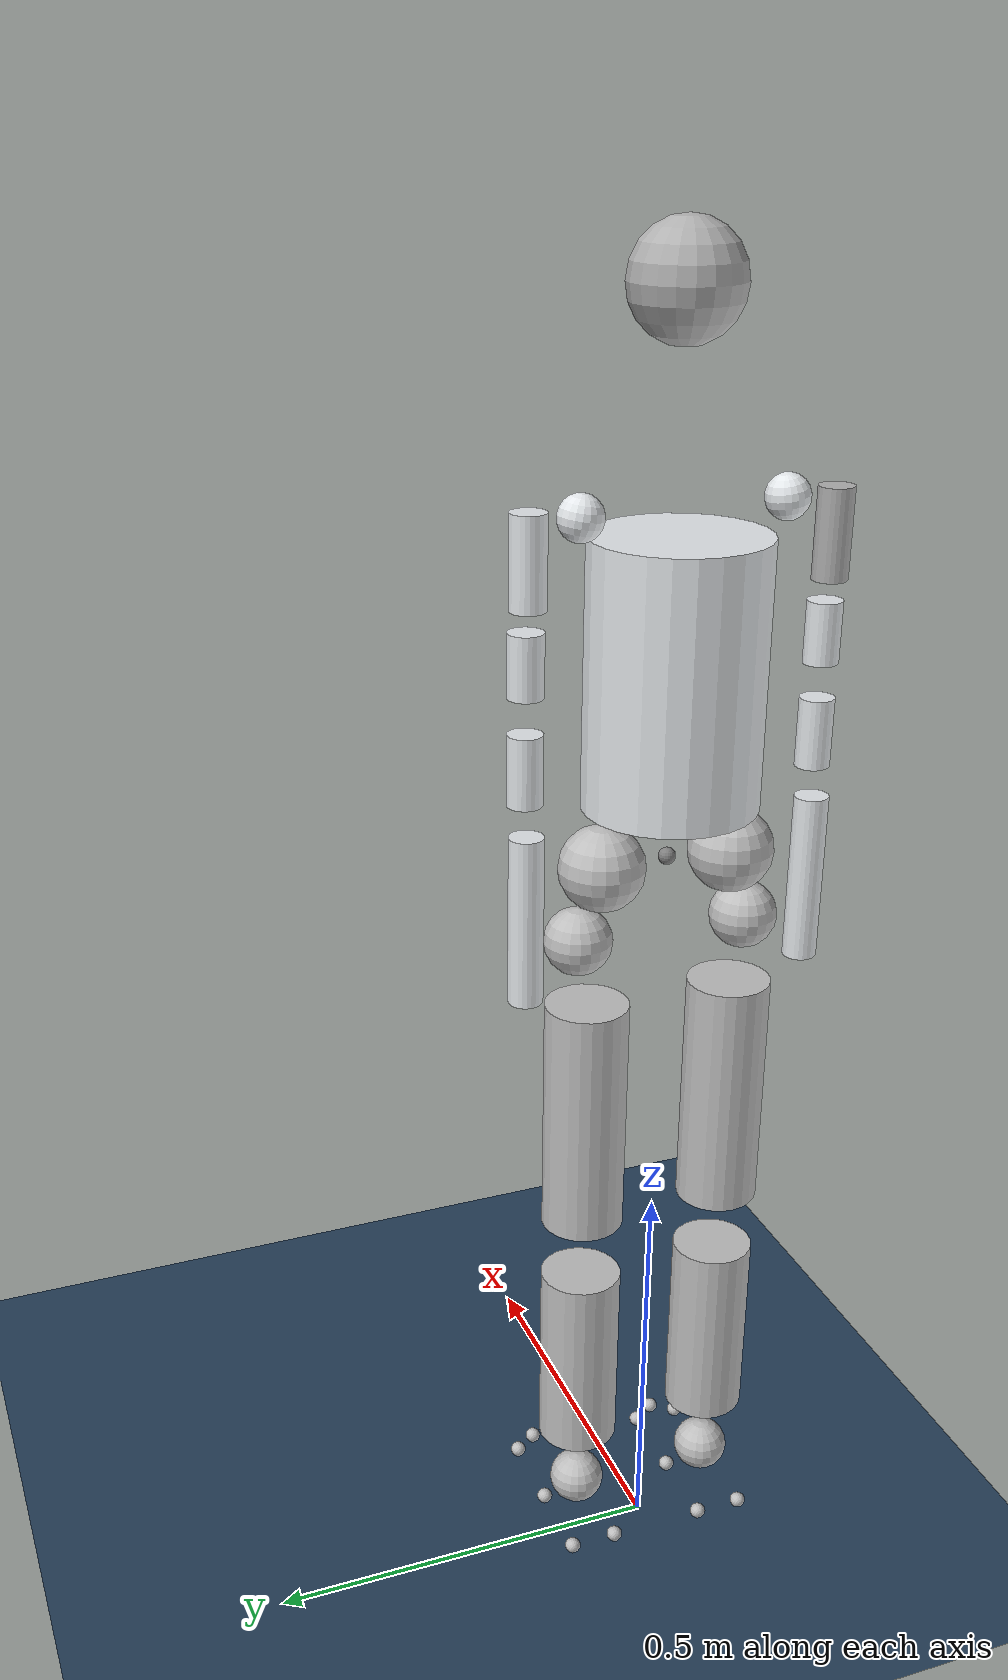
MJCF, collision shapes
<mujoco model="custom_robot_policy_scene">
  <include file="../src/assets/robots/custom_robot/xmls/custom_robot.xml" />

  <compiler
    angle="radian"
    meshdir="../src/assets/robots/custom_robot/xmls/assets"
    autolimits="true"
    eulerseq="zyx" />

  <asset>
    <texture
      name="groundplane"
      type="2d"
      builtin="checker"
      rgb1="0.2 0.3 0.4"
      rgb2="0.1 0.2 0.3"
      width="300"
      height="300"
      mark="edge"
      markrgb="0.8 0.8 0.8" />
    <material
      name="groundplane"
      texture="groundplane"
      texuniform="true"
      texrepeat="8 8"
      reflectance="0.2" />
  </asset>

  <worldbody>
    <light name="sun" pos="0 0 3" dir="0 0 -1" directional="true" castshadow="true" />
    <geom
      name="terrain"
      type="plane"
      size="20 20 0.1"
      material="groundplane"
      contype="1"
      conaffinity="1"
      friction="1.0 0.2 0.2" />
  </worldbody>

  <actuator>
    <motor name="left_hip_yaw_joint_motor" joint="left_hip_yaw_joint" ctrlrange="-80 80" />
    <motor name="left_hip_roll_joint_motor" joint="left_hip_roll_joint" ctrlrange="-120 120" />
    <motor name="left_hip_pitch_joint_motor" joint="left_hip_pitch_joint" ctrlrange="-212 212" />
    <motor name="left_knee_joint_motor" joint="left_knee_joint" ctrlrange="-180 180" />
    <motor name="left_ankle_pitch_joint_motor" joint="left_ankle_pitch_joint" ctrlrange="-80 80" />
    <motor name="left_ankle_roll_joint_motor" joint="left_ankle_roll_joint" ctrlrange="-20 20" />
    <motor name="right_hip_yaw_joint_motor" joint="right_hip_yaw_joint" ctrlrange="-80 80" />
    <motor name="right_hip_roll_joint_motor" joint="right_hip_roll_joint" ctrlrange="-120 120" />
    <motor name="right_hip_pitch_joint_motor" joint="right_hip_pitch_joint" ctrlrange="-212 212" />
    <motor name="right_knee_joint_motor" joint="right_knee_joint" ctrlrange="-180 180" />
    <motor name="right_ankle_pitch_joint_motor" joint="right_ankle_pitch_joint" ctrlrange="-80 80" />
    <motor name="right_ankle_roll_joint_motor" joint="right_ankle_roll_joint" ctrlrange="-20 20" />
  </actuator>
</mujoco>

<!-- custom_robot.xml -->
<mujoco model="X1">
  <compiler angle="radian" meshdir="assets/"/>

  <default>
    <joint damping="0.1" armature="0.01" frictionloss="0.2"/>
  </default>

  <asset>
    <mesh name="pelvis_link" file="pelvis_link.STL"/>
    <mesh name="left_hip_yaw_link" file="left_hip_yaw_link.STL"/>
    <mesh name="left_hip_roll_link" file="left_hip_roll_link.STL"/>
    <mesh name="left_hip_pitch_link" file="left_hip_pitch_link.STL"/>
    <mesh name="left_knee_link" file="left_knee_link.STL"/>
    <mesh name="left_ankle_pitch_link" file="left_ankle_pitch_link.STL"/>
    <mesh name="left_ankle_roll_link" file="left_ankle_roll_link.STL"/>
    <mesh name="right_hip_yaw_link" file="right_hip_yaw_link.STL"/>
    <mesh name="right_hip_roll_link" file="right_hip_roll_link.STL"/>
    <mesh name="right_hip_pitch_link" file="right_hip_pitch_link.STL"/>
    <mesh name="right_knee_link" file="right_knee_link.STL"/>
    <mesh name="right_ankle_pitch_link" file="right_ankle_pitch_link.STL"/>
    <mesh name="right_ankle_roll_link" file="right_ankle_roll_link.STL"/>
    <mesh name="waist_yaw_link" file="waist_yaw_link.STL"/>
    <mesh name="torso_link" file="torso_link.STL"/>
    <mesh name="head_link" file="head_link.STL"/>
    <mesh name="left_shoulder_pitch_link" file="left_shoulder_pitch_link.STL"/>
    <mesh name="left_shoulder_roll_link" file="left_shoulder_roll_link.STL"/>
    <mesh name="left_shoulder_yaw_link" file="left_shoulder_yaw_link.STL"/>
    <mesh name="left_elbow_link" file="left_elbow_link.STL"/>
    <mesh name="left_hand_roll_link" file="left_hand_roll_link.STL"/>
    <mesh name="right_shoulder_pitch_link" file="right_shoulder_pitch_link.STL"/>
    <mesh name="right_shoulder_roll_link" file="right_shoulder_roll_link.STL"/>
    <mesh name="right_shoulder_yaw_link" file="right_shoulder_yaw_link.STL"/>
    <mesh name="right_elbow_link" file="right_elbow_link.STL"/>
    <mesh name="right_hand_roll_link" content_type="model/stl" file="right_hand_roll_link.STL"/>
  </asset>

  <worldbody>
    <body name="pelvis_link" pos="0 0 0.97">
      <freejoint name="root_freejoint"/>
      <inertial pos="0 0 0.015" mass="0.0094248" diaginertia="9e-7 9e-7 5e-7"/>
      <geom type="mesh" contype="0" conaffinity="0" group="1" density="0" rgba="1 1 1 1" mesh="pelvis_link"/>
      <site name="imu_in_pelvis" size="0.01" pos="0.0 0.0 0.0"/>
      <body name="left_hip_yaw_link" pos="0 0 -0.083">
        <inertial pos="0.0035296 0.061121 0.0704809" quat="0.745645 0.416728 -0.336521 0.396365" mass="1.52173" diaginertia="0.0112539 0.00983725 0.00776992"/>
        <joint name="left_hip_yaw_joint" pos="0 0 0" axis="0 0 1" range="-0.518 0.518" actuatorfrcrange="-80 80"/>
        <geom type="mesh" contype="0" conaffinity="0" group="1" density="0" rgba="0.749024 0.749024 0.749024 1" mesh="left_hip_yaw_link"/>
        <geom size="0.05" pos="0 0.08 0.08" rgba="0.749024 0.749024 0.749024 1"/>
        <body name="left_hip_roll_link" pos="0.006 0.1175 0.0315">
          <inertial pos="-0.0195622 -0.0062121 -0.0731782" quat="0.478496 0.124224 0.103969 0.863018" mass="4.45606" diaginertia="0.0228823 0.0200094 0.0119336"/>
          <joint name="left_hip_roll_joint" pos="0 0 0" axis="1 0 0" range="-0.175 0.96" actuatorfrcrange="-120 120"/>
          <geom type="mesh" contype="0" conaffinity="0" group="1" density="0" rgba="0.749024 0.749024 0.749024 1" mesh="left_hip_roll_link"/>
          <geom size="0.04" pos="0 -0.013 -0.04" rgba="0.749024 0.749024 0.749024 1"/>
          <body name="left_hip_pitch_link" pos="0 -0.026 -0.123">
            <inertial pos="0.001095 0.0170436 -0.134553" quat="0.998957 -0.0345331 -0.0102479 0.0280764" mass="3.06209" diaginertia="0.0234556 0.0226233 0.00579509"/>
            <joint name="left_hip_pitch_joint" pos="0 0 0" axis="0 -1 0" range="-0.524 1.047" actuatorfrcrange="-212 212"/>
            <geom type="mesh" contype="0" conaffinity="0" group="1" density="0" rgba="0.749024 0.749024 0.749024 1" mesh="left_hip_pitch_link"/>
            <geom size="0.05 0.15" pos="0 0 -0.15" type="cylinder" rgba="0.749024 0.749024 0.749024 1"/>
            <body name="left_knee_link" pos="0 0 -0.324779">
              <inertial pos="0.005241 -0.000252 -0.118625" quat="0.716111 0.0231474 0.0221529 0.697251" mass="1.83843" diaginertia="0.0200792 0.0195009 0.00177258"/>
              <joint name="left_knee_joint" pos="0 0 0" axis="0 -1 0" range="-1.745 0.087" actuatorfrcrange="-180 180"/>
              <geom type="mesh" contype="0" conaffinity="0" group="1" density="0" rgba="0.749024 0.749024 0.749024 1" mesh="left_knee_link"/>
              <geom size="0.05 0.125" pos="0 0 -0.18" type="cylinder" rgba="0.749024 0.749024 0.749024 1"/>
              <body name="left_ankle_pitch_link" pos="0 0 -0.3595">
                <inertial pos="0.00270709 -0.00199973 -0.0216465" quat="0.701063 -0.0922568 -0.0922568 0.701063" mass="0.34756" diaginertia="0.00036491 0.00029392 0.00016663"/>
                <joint name="left_ankle_pitch_joint" pos="0 0 0" axis="0 -1 0" range="-1.082 1.082" actuatorfrcrange="-80 80"/>
                <geom type="mesh" contype="0" conaffinity="0" group="1" density="0" rgba="0.749024 0.749024 0.749024 1" mesh="left_ankle_pitch_link"/>
                <geom size="0.035" pos="0 -0.001 -0.03" rgba="0.749024 0.749024 0.749024 1"/>
                <body name="left_ankle_roll_link" pos="0 -0.002 -0.059">
                  <inertial pos="0.0505149 3.36e-05 -0.0136249" quat="0.000452713 0.691422 -3.76194e-05 0.722451" mass="1.29544" diaginertia="0.00543875 0.0051377 0.00115385"/>
                  <joint name="left_ankle_roll_joint" pos="0 0 0" axis="1 0 0" range="-0.664 0.664" actuatorfrcrange="-20 20"/>
                  <geom type="mesh" contype="0" conaffinity="0" group="1" density="0" rgba="0.749024 0.749024 0.749024 1" mesh="left_ankle_roll_link"/>
                  <geom name="left_foot1_collision" size="0.01" pos="-0.06 0.03 -0.033" quat="0.707107 0 -0.707107 0" rgba="0.749024 0.749024 0.749024 1"/>
                  <geom name="left_foot2_collision" size="0.01" pos="-0.06 -0.03 -0.033" quat="0.707107 0 -0.707107 0" rgba="0.749024 0.749024 0.749024 1"/>
                  <geom name="left_foot3_collision" size="0.01" pos="0.04 0.03 -0.033" quat="0.707107 0 -0.707107 0" rgba="0.749024 0.749024 0.749024 1"/>
                  <geom name="left_foot4_collision" size="0.01" pos="0.14 0.03 -0.033" quat="0.707107 0 -0.707107 0" rgba="0.749024 0.749024 0.749024 1"/>
                  <geom name="left_foot5_collision" size="0.01" pos="0.04 -0.03 -0.033" quat="0.707107 0 -0.707107 0" rgba="0.749024 0.749024 0.749024 1"/>
                  <geom name="left_foot6_collision" size="0.01" pos="0.14 -0.03 -0.033" quat="0.707107 0 -0.707107 0" rgba="0.749024 0.749024 0.749024 1"/>
                  <geom name="left_foot7_collision" size="0.01" pos="0.16 0 -0.033" quat="0.707107 0 -0.707107 0" rgba="0.749024 0.749024 0.749024 1"/>
                  <site name="left_foot" pos="0.05 0 -0.033" size="0.005"/>
                </body>
              </body>
            </body>
          </body>
        </body>
      </body>
      <body name="right_hip_yaw_link" pos="0 0 -0.083">
        <inertial pos="-0.0005917 -0.0372409 0.0516011" quat="0.552247 0.521761 -0.459888 0.459665" mass="2.08267" diaginertia="0.0121792 0.00970405 0.0061063"/>
        <joint name="right_hip_yaw_joint" pos="0 0 0" axis="0 0 -1" range="-0.785 0.785" actuatorfrcrange="-80 80"/>
        <geom type="mesh" contype="0" conaffinity="0" group="1" density="0" rgba="0.749024 0.749024 0.749024 1" mesh="right_hip_yaw_link"/>
        <geom size="0.05" pos="0 -0.08 0.08" rgba="0.749024 0.749024 0.749024 1"/>
        <body name="right_hip_roll_link" pos="0.006 -0.1175 0.0315">
          <inertial pos="-0.0195939 0.0062432 -0.0732378" quat="0.862889 0.103922 0.124075 0.478777" mass="4.45928" diaginertia="0.0229117 0.0200381 0.0119316"/>
          <joint name="right_hip_roll_joint" pos="0 0 0" axis="-1 0 0" range="-0.175 0.96" actuatorfrcrange="-120 120"/>
          <geom type="mesh" contype="0" conaffinity="0" group="1" density="0" rgba="0.749024 0.749024 0.749024 1" mesh="right_hip_roll_link"/>
          <geom size="0.04" pos="0 0.013 -0.04" rgba="0.749024 0.749024 0.749024 1"/>
          <body name="right_hip_pitch_link" pos="0 0.026 -0.123">
            <inertial pos="0.0010922 -0.0170324 -0.134845" quat="0.998503 0.0344118 -0.00962282 -0.0414217" mass="3.06882" diaginertia="0.0235812 0.0227445 0.00580518"/>
            <joint name="right_hip_pitch_joint" pos="0 0 0" axis="0 -1 0" range="-0.524 1.047" actuatorfrcrange="-212 212"/>
            <geom type="mesh" contype="0" conaffinity="0" group="1" density="0" rgba="0.749024 0.749024 0.749024 1" mesh="right_hip_pitch_link"/>
            <geom size="0.05 0.15" pos="0 0 -0.15" type="cylinder" rgba="0.749024 0.749024 0.749024 1"/>
            <body name="right_knee_link" pos="0 0 -0.324779">
              <inertial pos="0.0052892 0.0002646 -0.11794" quat="0.697301 0.0221129 0.02319 0.716062" mass="1.82263" diaginertia="0.019954 0.0193807 0.0017594"/>
              <joint name="right_knee_joint" pos="0 0 0" axis="0 -1 0" range="-1.745 0.087" actuatorfrcrange="-180 180"/>
              <geom type="mesh" contype="0" conaffinity="0" group="1" density="0" rgba="0.749024 0.749024 0.749024 1" mesh="right_knee_link"/>
              <geom size="0.05 0.125" pos="0 0 -0.18" type="cylinder" rgba="0.749024 0.749024 0.749024 1"/>
              <body name="right_ankle_pitch_link" pos="0 0 -0.3595">
                <inertial pos="0.00270708 -0.00200027 -0.0216465" quat="0.701063 -0.0922568 -0.0922568 0.701063" mass="0.34756" diaginertia="0.00036491 0.00029392 0.00016663"/>
                <joint name="right_ankle_pitch_joint" pos="0 0 0" axis="0 -1 0" range="-1.082 1.082" actuatorfrcrange="-80 80"/>
                <geom type="mesh" contype="0" conaffinity="0" group="1" density="0" rgba="0.749024 0.749024 0.749024 1" mesh="right_ankle_pitch_link"/>
                <geom size="0.035" pos="0 -0.001 -0.03" rgba="0.749024 0.749024 0.749024 1"/>
                <body name="right_ankle_roll_link" pos="0 -0.002 -0.059">
                  <inertial pos="0.0505149 3.36e-05 -0.0136249" quat="0.000452713 0.691422 -3.76194e-05 0.722451" mass="1.29544" diaginertia="0.00543875 0.0051377 0.00115385"/>
                  <joint name="right_ankle_roll_joint" pos="0 0 0" axis="-1 0 0" range="-0.664 0.664" actuatorfrcrange="-20 20"/>
                  <geom type="mesh" contype="0" conaffinity="0" group="1" density="0" rgba="0.749024 0.749024 0.749024 1" mesh="right_ankle_roll_link"/>
                  <geom name="right_foot1_collision" size="0.01" pos="-0.06 0.03 -0.033" quat="0.707107 0 -0.707107 0" rgba="0.749024 0.749024 0.749024 1"/>
                  <geom name="right_foot2_collision" size="0.01" pos="-0.06 -0.03 -0.033" quat="0.707107 0 -0.707107 0" rgba="0.749024 0.749024 0.749024 1"/>
                  <geom name="right_foot3_collision" size="0.01" pos="0.04 0.03 -0.033" quat="0.707107 0 -0.707107 0" rgba="0.749024 0.749024 0.749024 1"/>
                  <geom name="right_foot4_collision" size="0.01" pos="0.14 0.03 -0.033" quat="0.707107 0 -0.707107 0" rgba="0.749024 0.749024 0.749024 1"/>
                  <geom name="right_foot5_collision" size="0.01" pos="0.04 -0.03 -0.033" quat="0.707107 0 -0.707107 0" rgba="0.749024 0.749024 0.749024 1"/>
                  <geom name="right_foot6_collision" size="0.01" pos="0.14 -0.03 -0.033" quat="0.707107 0 -0.707107 0" rgba="0.749024 0.749024 0.749024 1"/>
                  <geom name="right_foot7_collision" size="0.01" pos="0.16 0 -0.033" quat="0.707107 0 -0.707107 0" rgba="0.749024 0.749024 0.749024 1"/>
                  <site name="right_foot" pos="0.05 0 -0.033" size="0.005"/>
                </body>
              </body>
            </body>
          </body>
        </body>
      </body>
      <body name="waist_yaw_link">
        <inertial pos="0.000304 -0.001138 0.289505" quat="0.002349 0.725429 0.000260 0.688293" mass="13.6256" diaginertia="0.071518 0.534466 0.552794"/>
        <geom type="mesh" contype="0" conaffinity="0" group="1" density="0" rgba="0.749024 0.749024 0.749024 1" mesh="waist_yaw_link"/>
        <geom pos="0.0003004 0 0.071" type="mesh" contype="0" conaffinity="0" group="1" density="0" rgba="0.898043 0.913729 0.925494 1" mesh="torso_link"/>
        <geom size="0.1 0.15" pos="0.0003004 0 0.211" type="cylinder" rgba="0.898043 0.913729 0.925494 1"/>
        <geom pos="-0.0099 0 0.4185" quat="1 0 0 0" type="mesh" contype="0" conaffinity="0" group="1" density="0" rgba="0.694122 0.694122 0.694122 1" mesh="head_link"/>
        <geom size="0.0621" pos="0.0106728 0 0.607532" rgba="0.694122 0.694122 0.694122 1"/>
        <body name="left_shoulder_pitch_link" pos="-0.0098996 0.11097 0.3903" quat="0.996637 0.0819385 0 0">
          <inertial pos="0.0009074 0.0380217 0.0016059" quat="0.0401166 0.708117 0.062849 0.702148" mass="0.154633" diaginertia="0.000219508 0.000191178 0.000114014"/>
          <geom type="mesh" contype="0" conaffinity="0" group="1" density="0" rgba="0.898043 0.913729 0.925494 1" mesh="left_shoulder_pitch_link"/>
          <geom size="0.025" pos="-0.007 0.01 0" rgba="0.898043 0.913729 0.925494 1"/>
          <body name="left_shoulder_roll_link" pos="0 0.06445 0" quat="0.996637 -0.0819385 0 0">
            <inertial pos="-5.5e-05 0.0002938 -0.0440642" quat="0.694278 0.00483734 0.0026195 0.719686" mass="1.02165" diaginertia="0.00192366 0.00188901 0.000502532"/>
            <geom type="mesh" contype="0" conaffinity="0" group="1" density="0" rgba="0.898043 0.913729 0.925494 1" mesh="left_shoulder_roll_link"/>
            <geom size="0.02 0.05" pos="0 0 -0.05" type="cylinder" rgba="0.898043 0.913729 0.925494 1"/>
            <body name="left_shoulder_yaw_link" pos="0.0001 0 -0.11859">
              <inertial pos="0.0047288 0.0002677 -0.0802826" quat="0.997723 -1.02928e-05 -0.0674311 0.0011841" mass="0.602108" diaginertia="0.0010188 0.0009712 0.000355796"/>
              <geom type="mesh" contype="0" conaffinity="0" group="1" density="0" rgba="0.898043 0.913729 0.925494 1" mesh="left_shoulder_yaw_link"/>
              <geom size="0.02 0.035" pos="0.005 0 -0.04" type="cylinder" rgba="0.898043 0.913729 0.925494 1"/>
              <body name="left_elbow_link" pos="0.0105 0 -0.10494" quat="0.707107 0 0.707107 0">
                <inertial pos="0.0488072 0.0001166 -0.0118144" quat="-0.00830932 0.675311 -0.0125558 0.737379" mass="0.475564" diaginertia="0.000651221 0.000600272 0.000315507"/>
                <geom type="mesh" contype="0" conaffinity="0" group="1" density="0" rgba="0.898043 0.913729 0.925494 1" mesh="left_elbow_link"/>
                <geom size="0.02 0.04" pos="0.05 0 -0.005" quat="0.707107 0 -0.707107 0" type="cylinder" rgba="0.898043 0.913729 0.925494 1"/>
                <body name="left_hand_roll_link" pos="0.105 0 -0.0105">
                  <inertial pos="0.0994076 -0.0009678 0.0023608" quat="0.517927 0.480598 0.501924 0.498848" mass="0.436015" diaginertia="0.00402199 0.00392713 0.000266487"/>
                  <geom type="mesh" contype="0" conaffinity="0" group="1" density="0" rgba="0.898043 0.913729 0.925494 1" mesh="left_hand_roll_link"/>
                  <geom size="0.02 0.1" pos="0.12 0 0" quat="0.5 -0.5 0.5 -0.5" type="cylinder" rgba="0.898043 0.913729 0.925494 1"/>
                </body>
              </body>
            </body>
          </body>
        </body>
        <body name="right_shoulder_pitch_link" pos="-0.0098996 -0.11097 0.3903" quat="0.996637 -0.0819385 0 0">
          <inertial pos="0.0009117 -0.0380217 0.0016049" quat="-0.0401316 0.708114 -0.0628345 0.702151" mass="0.154634" diaginertia="0.000219608 0.000191278 0.000114014"/>
          <geom type="mesh" contype="0" conaffinity="0" group="1" density="0" rgba="0.898043 0.913729 0.925494 1" mesh="right_shoulder_pitch_link"/>
          <geom size="0.025" pos="0.007 -0.01 0" rgba="0.898043 0.913729 0.925494 1"/>
          <body name="right_shoulder_roll_link" pos="0 -0.06445 0" quat="0.996637 0.0819385 0 0">
            <inertial pos="-0.0003525 -0.0002736 -0.0440642" quat="0.723025 0.0015 0.00355236 0.690811" mass="1.02165" diaginertia="0.00192358 0.00189 0.000503517"/>
            <geom type="mesh" contype="0" conaffinity="0" group="1" density="0" rgba="0.694122 0.694122 0.694122 1" mesh="right_shoulder_roll_link"/>
            <geom size="0.02 0.05" pos="0 0 -0.05" type="cylinder" rgba="0.694122 0.694122 0.694122 1"/>
            <body name="right_shoulder_yaw_link" pos="-0.0002 0 -0.11859">
              <inertial pos="0.0047292 5.59e-05 -0.0802804" quat="0.997707 0.00428934 -0.067404 -0.00438015" mass="0.602142" diaginertia="0.00101901 0.000971335 0.000355859"/>
              <geom type="mesh" contype="0" conaffinity="0" group="1" density="0" rgba="0.898043 0.913729 0.925494 1" mesh="right_shoulder_yaw_link"/>
              <geom size="0.02 0.035" pos="0.005 0 -0.04" type="cylinder" rgba="0.898043 0.913729 0.925494 1"/>
              <body name="right_elbow_link" pos="0.0105 0 -0.10494" quat="0.707107 0 0.707107 0">
                <inertial pos="0.0488729 -6.02e-05 -0.0118145" quat="0.00887988 0.675289 0.0128564 0.737388" mass="0.475571" diaginertia="0.000650918 0.000599066 0.000316516"/>
                <geom type="mesh" contype="0" conaffinity="0" group="1" density="0" rgba="0.898043 0.913729 0.925494 1" mesh="right_elbow_link"/>
                <geom size="0.02 0.04" pos="0.05 0 -0.005" quat="0.707107 0 -0.707107 0" type="cylinder" rgba="0.898043 0.913729 0.925494 1"/>
                <body name="right_hand_roll_link" pos="0.105 0 -0.0105">
                  <inertial pos="0.0994076 -0.0009678 0.0023608" quat="0.517927 0.480598 0.501924 0.498848" mass="0.436015" diaginertia="0.00402199 0.00392713 0.000266487"/>
                  <geom type="mesh" contype="0" conaffinity="0" group="1" density="0" rgba="0.898043 0.913729 0.925494 1" mesh="right_hand_roll_link"/>
                  <geom size="0.02 0.1" pos="0.12 0 0" quat="0.5 0.5 0.5 0.5" type="cylinder" rgba="0.898043 0.913729 0.925494 1"/>
                </body>
              </body>
            </body>
          </body>
        </body>
      </body>
    </body>
  </worldbody>

  <sensor>
    <gyro name="imu_ang_vel" site="imu_in_pelvis"/>
    <velocimeter name="imu_lin_vel" site="imu_in_pelvis"/>
    <subtreeangmom name="root_angmom" body="pelvis_link"/>
  </sensor>

  <actuator>
    <motor name="left_hip_yaw_motor" joint="left_hip_yaw_joint" gear="1" ctrllimited="true" ctrlrange="-80 80" forcelimited="true" forcerange="-80 80"/>
    <motor name="left_hip_roll_motor" joint="left_hip_roll_joint" gear="1" ctrllimited="true" ctrlrange="-120 120" forcelimited="true" forcerange="-120 120"/>
    <motor name="left_hip_pitch_motor" joint="left_hip_pitch_joint" gear="1" ctrllimited="true" ctrlrange="-212 212" forcelimited="true" forcerange="-212 212"/>
    <motor name="left_knee_motor" joint="left_knee_joint" gear="1" ctrllimited="true" ctrlrange="-180 180" forcelimited="true" forcerange="-180 180"/>
    <motor name="left_ankle_pitch_motor" joint="left_ankle_pitch_joint" gear="1" ctrllimited="true" ctrlrange="-80 80" forcelimited="true" forcerange="-80 80"/>
    <motor name="left_ankle_roll_motor" joint="left_ankle_roll_joint" gear="1" ctrllimited="true" ctrlrange="-20 20" forcelimited="true" forcerange="-20 20"/>
    <motor name="right_hip_yaw_motor" joint="right_hip_yaw_joint" gear="1" ctrllimited="true" ctrlrange="-80 80" forcelimited="true" forcerange="-80 80"/>
    <motor name="right_hip_roll_motor" joint="right_hip_roll_joint" gear="1" ctrllimited="true" ctrlrange="-120 120" forcelimited="true" forcerange="-120 120"/>
    <motor name="right_hip_pitch_motor" joint="right_hip_pitch_joint" gear="1" ctrllimited="true" ctrlrange="-212 212" forcelimited="true" forcerange="-212 212"/>
    <motor name="right_knee_motor" joint="right_knee_joint" gear="1" ctrllimited="true" ctrlrange="-180 180" forcelimited="true" forcerange="-180 180"/>
    <motor name="right_ankle_pitch_motor" joint="right_ankle_pitch_joint" gear="1" ctrllimited="true" ctrlrange="-80 80" forcelimited="true" forcerange="-80 80"/>
    <motor name="right_ankle_roll_motor" joint="right_ankle_roll_joint" gear="1" ctrllimited="true" ctrlrange="-20 20" forcelimited="true" forcerange="-20 20"/>
  </actuator>
</mujoco>
